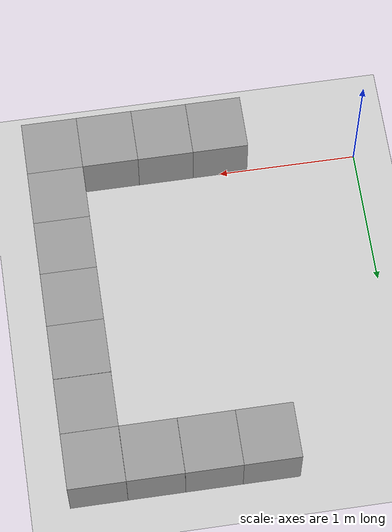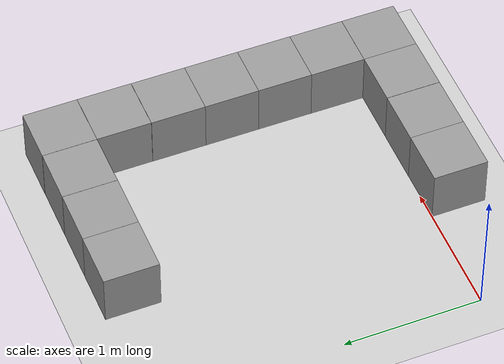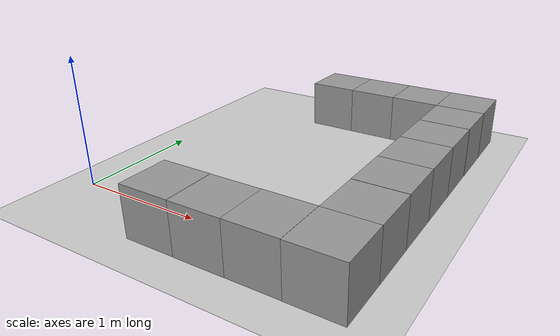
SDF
<sdf version="1.7">
 <world name="default">
  <model name="ground_plane">
   <static>1</static>
   <link name="link">
    <collision name="collision">
     <geometry><plane><normal>0 0 1</normal><size>100 100</size></plane></geometry>
     <surface><friction><ode><mu>100</mu><mu2>50</mu2></ode></friction></surface>
    </collision>
    <visual name="visual">
     <cast_shadows>0</cast_shadows>
     <geometry><plane><normal>0 0 1</normal><size>100 100</size></plane></geometry>
     <material>
      <script><uri>file://media/materials/scripts/gazebo.material</uri><name>Gazebo/Grey</name></script>
     </material>
    </visual>
   </link>
  </model>
  <model name="simplebox_clone_11">
   <link name="link_0_clone">
    <inertial>
     <mass>1</mass>
     <inertia>
      <ixx>0.166667</ixx>
      <ixy>0</ixy>
      <ixz>0</ixz>
      <iyy>0.166667</iyy>
      <iyz>0</iyz>
      <izz>0.166667</izz>
     </inertia>
    </inertial>
    <pose>0 0 0.2 0 -0 0</pose>
    <visual name="visual">
     <geometry><box><size>0.4 0.4 0.4</size></box></geometry>
     <material>
      <lighting>1</lighting>
      <script><uri>file://media/materials/scripts/gazebo.material</uri><name>Gazebo/Grey</name></script>
      <shader type="pixel"><normal_map>__default__</normal_map></shader>
      <ambient>0.3 0.3 0.3 1</ambient>
      <diffuse>0.7 0.7 0.7 1</diffuse>
      <specular>0.01 0.01 0.01 1</specular>
      <emissive>0 0 0 1</emissive>
     </material>
    </visual>
    <collision name="collision">
     <geometry><box><size>0.4 0.4 0.4</size></box></geometry>
     <surface>
      <friction>
       <ode><mu>1</mu><mu2>1</mu2><fdir1>0 0 0</fdir1><slip1>0</slip1><slip2>0</slip2></ode>
       <torsional>
        <coefficient>1</coefficient>
        <patch_radius>0</patch_radius>
        <surface_radius>0</surface_radius>
        <use_patch_radius>1</use_patch_radius>
        <ode><slip>0</slip></ode>
       </torsional>
      </friction>
      <bounce><restitution_coefficient>0</restitution_coefficient><threshold>1e+06</threshold></bounce>
      <contact>
       <collide_without_contact>0</collide_without_contact>
       <collide_without_contact_bitmask>1</collide_without_contact_bitmask>
       <collide_bitmask>1</collide_bitmask>
       <ode>
        <soft_cfm>0</soft_cfm>
        <soft_erp>0.2</soft_erp>
        <kp>1e+13</kp>
        <kd>1</kd>
        <max_vel>0.01</max_vel>
        <min_depth>0</min_depth>
       </ode>
       <bullet>
        <split_impulse>1</split_impulse>
        <split_impulse_penetration_threshold>-0.01</split_impulse_penetration_threshold>
        <soft_cfm>0</soft_cfm>
        <soft_erp>0.2</soft_erp>
        <kp>1e+13</kp>
        <kd>1</kd>
       </bullet>
      </contact>
     </surface>
    </collision>
   </link>
   <static>0</static>
   <pose>0.999926 2.20003 -0 0 -0 6.2e-05</pose>
  </model>
  <model name="simplebox_clone_12">
   <link name="link_0_clone">
    <inertial>
     <mass>1</mass>
     <inertia>
      <ixx>0.166667</ixx>
      <ixy>0</ixy>
      <ixz>0</ixz>
      <iyy>0.166667</iyy>
      <iyz>0</iyz>
      <izz>0.166667</izz>
     </inertia>
    </inertial>
    <pose>0 0 0.2 0 -0 0</pose>
    <visual name="visual">
     <geometry><box><size>0.4 0.4 0.4</size></box></geometry>
     <material>
      <lighting>1</lighting>
      <script><uri>file://media/materials/scripts/gazebo.material</uri><name>Gazebo/Grey</name></script>
      <shader type="pixel"><normal_map>__default__</normal_map></shader>
      <ambient>0.3 0.3 0.3 1</ambient>
      <diffuse>0.7 0.7 0.7 1</diffuse>
      <specular>0.01 0.01 0.01 1</specular>
      <emissive>0 0 0 1</emissive>
     </material>
    </visual>
    <collision name="collision">
     <geometry><box><size>0.4 0.4 0.4</size></box></geometry>
     <surface>
      <friction>
       <ode><mu>1</mu><mu2>1</mu2><fdir1>0 0 0</fdir1><slip1>0</slip1><slip2>0</slip2></ode>
       <torsional>
        <coefficient>1</coefficient>
        <patch_radius>0</patch_radius>
        <surface_radius>0</surface_radius>
        <use_patch_radius>1</use_patch_radius>
        <ode><slip>0</slip></ode>
       </torsional>
      </friction>
      <bounce><restitution_coefficient>0</restitution_coefficient><threshold>1e+06</threshold></bounce>
      <contact>
       <collide_without_contact>0</collide_without_contact>
       <collide_without_contact_bitmask>1</collide_without_contact_bitmask>
       <collide_bitmask>1</collide_bitmask>
       <ode>
        <soft_cfm>0</soft_cfm>
        <soft_erp>0.2</soft_erp>
        <kp>1e+13</kp>
        <kd>1</kd>
        <max_vel>0.01</max_vel>
        <min_depth>0</min_depth>
       </ode>
       <bullet>
        <split_impulse>1</split_impulse>
        <split_impulse_penetration_threshold>-0.01</split_impulse_penetration_threshold>
        <soft_cfm>0</soft_cfm>
        <soft_erp>0.2</soft_erp>
        <kp>1e+13</kp>
        <kd>1</kd>
       </bullet>
      </contact>
     </surface>
    </collision>
   </link>
   <static>0</static>
   <pose>1.39994 2.20002 -0 0 -0 0.000118</pose>
  </model>
  <model name="simplebox_clone_13">
   <link name="link_0_clone">
    <inertial>
     <mass>1</mass>
     <inertia>
      <ixx>0.166667</ixx>
      <ixy>0</ixy>
      <ixz>0</ixz>
      <iyy>0.166667</iyy>
      <iyz>0</iyz>
      <izz>0.166667</izz>
     </inertia>
    </inertial>
    <pose>0 0 0.2 0 -0 0</pose>
    <visual name="visual">
     <geometry><box><size>0.4 0.4 0.4</size></box></geometry>
     <material>
      <lighting>1</lighting>
      <script><uri>file://media/materials/scripts/gazebo.material</uri><name>Gazebo/Grey</name></script>
      <shader type="pixel"><normal_map>__default__</normal_map></shader>
      <ambient>0.3 0.3 0.3 1</ambient>
      <diffuse>0.7 0.7 0.7 1</diffuse>
      <specular>0.01 0.01 0.01 1</specular>
      <emissive>0 0 0 1</emissive>
     </material>
    </visual>
    <collision name="collision">
     <geometry><box><size>0.4 0.4 0.4</size></box></geometry>
     <surface>
      <friction>
       <ode><mu>1</mu><mu2>1</mu2><fdir1>0 0 0</fdir1><slip1>0</slip1><slip2>0</slip2></ode>
       <torsional>
        <coefficient>1</coefficient>
        <patch_radius>0</patch_radius>
        <surface_radius>0</surface_radius>
        <use_patch_radius>1</use_patch_radius>
        <ode><slip>0</slip></ode>
       </torsional>
      </friction>
      <bounce><restitution_coefficient>0</restitution_coefficient><threshold>1e+06</threshold></bounce>
      <contact>
       <collide_without_contact>0</collide_without_contact>
       <collide_without_contact_bitmask>1</collide_without_contact_bitmask>
       <collide_bitmask>1</collide_bitmask>
       <ode>
        <soft_cfm>0</soft_cfm>
        <soft_erp>0.2</soft_erp>
        <kp>1e+13</kp>
        <kd>1</kd>
        <max_vel>0.01</max_vel>
        <min_depth>0</min_depth>
       </ode>
       <bullet>
        <split_impulse>1</split_impulse>
        <split_impulse_penetration_threshold>-0.01</split_impulse_penetration_threshold>
        <soft_cfm>0</soft_cfm>
        <soft_erp>0.2</soft_erp>
        <kp>1e+13</kp>
        <kd>1</kd>
       </bullet>
      </contact>
     </surface>
    </collision>
   </link>
   <static>0</static>
   <pose>1.80018 2.20005 -0 -0 -0 -0.00013</pose>
  </model>
  <model name="simplebox_clone_14_clone">
   <link name="link_0_clone">
    <inertial>
     <mass>1</mass>
     <inertia>
      <ixx>0.166667</ixx>
      <ixy>0</ixy>
      <ixz>0</ixz>
      <iyy>0.166667</iyy>
      <iyz>0</iyz>
      <izz>0.166667</izz>
     </inertia>
    </inertial>
    <pose>0 0 0.2 0 -0 0</pose>
    <visual name="visual">
     <geometry><box><size>0.4 0.4 0.4</size></box></geometry>
     <material>
      <lighting>1</lighting>
      <script><uri>file://media/materials/scripts/gazebo.material</uri><name>Gazebo/Grey</name></script>
      <shader type="pixel"><normal_map>__default__</normal_map></shader>
      <ambient>0.3 0.3 0.3 1</ambient>
      <diffuse>0.7 0.7 0.7 1</diffuse>
      <specular>0.01 0.01 0.01 1</specular>
      <emissive>0 0 0 1</emissive>
     </material>
    </visual>
    <collision name="collision">
     <geometry><box><size>0.4 0.4 0.4</size></box></geometry>
     <surface>
      <friction>
       <ode><mu>1</mu><mu2>1</mu2><fdir1>0 0 0</fdir1><slip1>0</slip1><slip2>0</slip2></ode>
       <torsional>
        <coefficient>1</coefficient>
        <patch_radius>0</patch_radius>
        <surface_radius>0</surface_radius>
        <use_patch_radius>1</use_patch_radius>
        <ode><slip>0</slip></ode>
       </torsional>
      </friction>
      <bounce><restitution_coefficient>0</restitution_coefficient><threshold>1e+06</threshold></bounce>
      <contact>
       <collide_without_contact>0</collide_without_contact>
       <collide_without_contact_bitmask>1</collide_without_contact_bitmask>
       <collide_bitmask>1</collide_bitmask>
       <ode>
        <soft_cfm>0</soft_cfm>
        <soft_erp>0.2</soft_erp>
        <kp>1e+13</kp>
        <kd>1</kd>
        <max_vel>0.01</max_vel>
        <min_depth>0</min_depth>
       </ode>
       <bullet>
        <split_impulse>1</split_impulse>
        <split_impulse_penetration_threshold>-0.01</split_impulse_penetration_threshold>
        <soft_cfm>0</soft_cfm>
        <soft_erp>0.2</soft_erp>
        <kp>1e+13</kp>
        <kd>1</kd>
       </bullet>
      </contact>
     </surface>
    </collision>
   </link>
   <static>0</static>
   <pose>2.20103 1.80075 -0 0 -0 0.000131</pose>
  </model>
  <model name="simplebox_clone_14_clone_0">
   <link name="link_0_clone">
    <inertial>
     <mass>1</mass>
     <inertia>
      <ixx>0.166667</ixx>
      <ixy>0</ixy>
      <ixz>0</ixz>
      <iyy>0.166667</iyy>
      <iyz>0</iyz>
      <izz>0.166667</izz>
     </inertia>
    </inertial>
    <pose>0 0 0.2 0 -0 0</pose>
    <visual name="visual">
     <geometry><box><size>0.4 0.4 0.4</size></box></geometry>
     <material>
      <lighting>1</lighting>
      <script><uri>file://media/materials/scripts/gazebo.material</uri><name>Gazebo/Grey</name></script>
      <shader type="pixel"><normal_map>__default__</normal_map></shader>
      <ambient>0.3 0.3 0.3 1</ambient>
      <diffuse>0.7 0.7 0.7 1</diffuse>
      <specular>0.01 0.01 0.01 1</specular>
      <emissive>0 0 0 1</emissive>
     </material>
    </visual>
    <collision name="collision">
     <geometry><box><size>0.4 0.4 0.4</size></box></geometry>
     <surface>
      <friction>
       <ode><mu>1</mu><mu2>1</mu2><fdir1>0 0 0</fdir1><slip1>0</slip1><slip2>0</slip2></ode>
       <torsional>
        <coefficient>1</coefficient>
        <patch_radius>0</patch_radius>
        <surface_radius>0</surface_radius>
        <use_patch_radius>1</use_patch_radius>
        <ode><slip>0</slip></ode>
       </torsional>
      </friction>
      <bounce><restitution_coefficient>0</restitution_coefficient><threshold>1e+06</threshold></bounce>
      <contact>
       <collide_without_contact>0</collide_without_contact>
       <collide_without_contact_bitmask>1</collide_without_contact_bitmask>
       <collide_bitmask>1</collide_bitmask>
       <ode>
        <soft_cfm>0</soft_cfm>
        <soft_erp>0.2</soft_erp>
        <kp>1e+13</kp>
        <kd>1</kd>
        <max_vel>0.01</max_vel>
        <min_depth>0</min_depth>
       </ode>
       <bullet>
        <split_impulse>1</split_impulse>
        <split_impulse_penetration_threshold>-0.01</split_impulse_penetration_threshold>
        <soft_cfm>0</soft_cfm>
        <soft_erp>0.2</soft_erp>
        <kp>1e+13</kp>
        <kd>1</kd>
       </bullet>
      </contact>
     </surface>
    </collision>
   </link>
   <static>0</static>
   <pose>2.2007 2.201 -0 0 -0 0.001377</pose>
  </model>
  <model name="simplebox_clone_2_clone_2_clone_0">
   <link name="link_0_clone">
    <inertial>
     <mass>1</mass>
     <inertia>
      <ixx>0.166667</ixx>
      <ixy>0</ixy>
      <ixz>0</ixz>
      <iyy>0.166667</iyy>
      <iyz>0</iyz>
      <izz>0.166667</izz>
     </inertia>
    </inertial>
    <pose>0 0 0.2 0 -0 0</pose>
    <visual name="visual">
     <geometry><box><size>0.4 0.4 0.4</size></box></geometry>
     <material>
      <lighting>1</lighting>
      <script><uri>file://media/materials/scripts/gazebo.material</uri><name>Gazebo/Grey</name></script>
      <shader type="pixel"><normal_map>__default__</normal_map></shader>
      <ambient>0.3 0.3 0.3 1</ambient>
      <diffuse>0.7 0.7 0.7 1</diffuse>
      <specular>0.01 0.01 0.01 1</specular>
      <emissive>0 0 0 1</emissive>
     </material>
    </visual>
    <collision name="collision">
     <geometry><box><size>0.4 0.4 0.4</size></box></geometry>
     <surface>
      <friction>
       <ode><mu>1</mu><mu2>1</mu2><fdir1>0 0 0</fdir1><slip1>0</slip1><slip2>0</slip2></ode>
       <torsional>
        <coefficient>1</coefficient>
        <patch_radius>0</patch_radius>
        <surface_radius>0</surface_radius>
        <use_patch_radius>1</use_patch_radius>
        <ode><slip>0</slip></ode>
       </torsional>
      </friction>
      <bounce><restitution_coefficient>0</restitution_coefficient><threshold>1e+06</threshold></bounce>
      <contact>
       <collide_without_contact>0</collide_without_contact>
       <collide_without_contact_bitmask>1</collide_without_contact_bitmask>
       <collide_bitmask>1</collide_bitmask>
       <ode>
        <soft_cfm>0</soft_cfm>
        <soft_erp>0.2</soft_erp>
        <kp>1e+13</kp>
        <kd>1</kd>
        <max_vel>0.01</max_vel>
        <min_depth>0</min_depth>
       </ode>
       <bullet>
        <split_impulse>1</split_impulse>
        <split_impulse_penetration_threshold>-0.01</split_impulse_penetration_threshold>
        <soft_cfm>0</soft_cfm>
        <soft_erp>0.2</soft_erp>
        <kp>1e+13</kp>
        <kd>1</kd>
       </bullet>
      </contact>
     </surface>
    </collision>
   </link>
   <static>0</static>
   <pose>0.999997 -0.199999 -0 0 -0 3e-06</pose>
  </model>
  <model name="simplebox_clone_2_clone_2_clone_1">
   <link name="link_0_clone">
    <inertial>
     <mass>1</mass>
     <inertia>
      <ixx>0.166667</ixx>
      <ixy>0</ixy>
      <ixz>0</ixz>
      <iyy>0.166667</iyy>
      <iyz>0</iyz>
      <izz>0.166667</izz>
     </inertia>
    </inertial>
    <pose>0 0 0.2 0 -0 0</pose>
    <visual name="visual">
     <geometry><box><size>0.4 0.4 0.4</size></box></geometry>
     <material>
      <lighting>1</lighting>
      <script><uri>file://media/materials/scripts/gazebo.material</uri><name>Gazebo/Grey</name></script>
      <shader type="pixel"><normal_map>__default__</normal_map></shader>
      <ambient>0.3 0.3 0.3 1</ambient>
      <diffuse>0.7 0.7 0.7 1</diffuse>
      <specular>0.01 0.01 0.01 1</specular>
      <emissive>0 0 0 1</emissive>
     </material>
    </visual>
    <collision name="collision">
     <geometry><box><size>0.4 0.4 0.4</size></box></geometry>
     <surface>
      <friction>
       <ode><mu>1</mu><mu2>1</mu2><fdir1>0 0 0</fdir1><slip1>0</slip1><slip2>0</slip2></ode>
       <torsional>
        <coefficient>1</coefficient>
        <patch_radius>0</patch_radius>
        <surface_radius>0</surface_radius>
        <use_patch_radius>1</use_patch_radius>
        <ode><slip>0</slip></ode>
       </torsional>
      </friction>
      <bounce><restitution_coefficient>0</restitution_coefficient><threshold>1e+06</threshold></bounce>
      <contact>
       <collide_without_contact>0</collide_without_contact>
       <collide_without_contact_bitmask>1</collide_without_contact_bitmask>
       <collide_bitmask>1</collide_bitmask>
       <ode>
        <soft_cfm>0</soft_cfm>
        <soft_erp>0.2</soft_erp>
        <kp>1e+13</kp>
        <kd>1</kd>
        <max_vel>0.01</max_vel>
        <min_depth>0</min_depth>
       </ode>
       <bullet>
        <split_impulse>1</split_impulse>
        <split_impulse_penetration_threshold>-0.01</split_impulse_penetration_threshold>
        <soft_cfm>0</soft_cfm>
        <soft_erp>0.2</soft_erp>
        <kp>1e+13</kp>
        <kd>1</kd>
       </bullet>
      </contact>
     </surface>
    </collision>
   </link>
   <static>0</static>
   <pose>1.4 -0.199996 -0.001323 0 -0 9e-06</pose>
  </model>
  <model name="simplebox_clone_2_clone_2_clone_2">
   <link name="link_0_clone">
    <inertial>
     <mass>1</mass>
     <inertia>
      <ixx>0.166667</ixx>
      <ixy>0</ixy>
      <ixz>0</ixz>
      <iyy>0.166667</iyy>
      <iyz>0</iyz>
      <izz>0.166667</izz>
     </inertia>
    </inertial>
    <pose>0 0 0.2 0 -0 0</pose>
    <visual name="visual">
     <geometry><box><size>0.4 0.4 0.4</size></box></geometry>
     <material>
      <lighting>1</lighting>
      <script><uri>file://media/materials/scripts/gazebo.material</uri><name>Gazebo/Grey</name></script>
      <shader type="pixel"><normal_map>__default__</normal_map></shader>
      <ambient>0.3 0.3 0.3 1</ambient>
      <diffuse>0.7 0.7 0.7 1</diffuse>
      <specular>0.01 0.01 0.01 1</specular>
      <emissive>0 0 0 1</emissive>
     </material>
    </visual>
    <collision name="collision">
     <geometry><box><size>0.4 0.4 0.4</size></box></geometry>
     <surface>
      <friction>
       <ode><mu>1</mu><mu2>1</mu2><fdir1>0 0 0</fdir1><slip1>0</slip1><slip2>0</slip2></ode>
       <torsional>
        <coefficient>1</coefficient>
        <patch_radius>0</patch_radius>
        <surface_radius>0</surface_radius>
        <use_patch_radius>1</use_patch_radius>
        <ode><slip>0</slip></ode>
       </torsional>
      </friction>
      <bounce><restitution_coefficient>0</restitution_coefficient><threshold>1e+06</threshold></bounce>
      <contact>
       <collide_without_contact>0</collide_without_contact>
       <collide_without_contact_bitmask>1</collide_without_contact_bitmask>
       <collide_bitmask>1</collide_bitmask>
       <ode>
        <soft_cfm>0</soft_cfm>
        <soft_erp>0.2</soft_erp>
        <kp>1e+13</kp>
        <kd>1</kd>
        <max_vel>0.01</max_vel>
        <min_depth>0</min_depth>
       </ode>
       <bullet>
        <split_impulse>1</split_impulse>
        <split_impulse_penetration_threshold>-0.01</split_impulse_penetration_threshold>
        <soft_cfm>0</soft_cfm>
        <soft_erp>0.2</soft_erp>
        <kp>1e+13</kp>
        <kd>1</kd>
       </bullet>
      </contact>
     </surface>
    </collision>
   </link>
   <static>0</static>
   <pose>1.8 -0.2 -5e-06 -7e-06 -6e-06 1e-05</pose>
  </model>
  <model name="simplebox_clone_2_clone_2_clone_3">
   <link name="link_0_clone">
    <inertial>
     <mass>1</mass>
     <inertia>
      <ixx>0.166667</ixx>
      <ixy>0</ixy>
      <ixz>0</ixz>
      <iyy>0.166667</iyy>
      <iyz>0</iyz>
      <izz>0.166667</izz>
     </inertia>
    </inertial>
    <pose>0 0 0.2 0 -0 0</pose>
    <visual name="visual">
     <geometry><box><size>0.4 0.4 0.4</size></box></geometry>
     <material>
      <lighting>1</lighting>
      <script><uri>file://media/materials/scripts/gazebo.material</uri><name>Gazebo/Grey</name></script>
      <shader type="pixel"><normal_map>__default__</normal_map></shader>
      <ambient>0.3 0.3 0.3 1</ambient>
      <diffuse>0.7 0.7 0.7 1</diffuse>
      <specular>0.01 0.01 0.01 1</specular>
      <emissive>0 0 0 1</emissive>
     </material>
    </visual>
    <collision name="collision">
     <geometry><box><size>0.4 0.4 0.4</size></box></geometry>
     <surface>
      <friction>
       <ode><mu>1</mu><mu2>1</mu2><fdir1>0 0 0</fdir1><slip1>0</slip1><slip2>0</slip2></ode>
       <torsional>
        <coefficient>1</coefficient>
        <patch_radius>0</patch_radius>
        <surface_radius>0</surface_radius>
        <use_patch_radius>1</use_patch_radius>
        <ode><slip>0</slip></ode>
       </torsional>
      </friction>
      <bounce><restitution_coefficient>0</restitution_coefficient><threshold>1e+06</threshold></bounce>
      <contact>
       <collide_without_contact>0</collide_without_contact>
       <collide_without_contact_bitmask>1</collide_without_contact_bitmask>
       <collide_bitmask>1</collide_bitmask>
       <ode>
        <soft_cfm>0</soft_cfm>
        <soft_erp>0.2</soft_erp>
        <kp>1e+13</kp>
        <kd>1</kd>
        <max_vel>0.01</max_vel>
        <min_depth>0</min_depth>
       </ode>
       <bullet>
        <split_impulse>1</split_impulse>
        <split_impulse_penetration_threshold>-0.01</split_impulse_penetration_threshold>
        <soft_cfm>0</soft_cfm>
        <soft_erp>0.2</soft_erp>
        <kp>1e+13</kp>
        <kd>1</kd>
       </bullet>
      </contact>
     </surface>
    </collision>
   </link>
   <static>0</static>
   <pose>2.2 -0.200005 -0.001166 0 -0 9e-06</pose>
  </model>
  <model name="simplebox_clone_2_clone_2_clone_3_clone">
   <link name="link_0_clone">
    <inertial>
     <mass>1</mass>
     <inertia>
      <ixx>0.166667</ixx>
      <ixy>0</ixy>
      <ixz>0</ixz>
      <iyy>0.166667</iyy>
      <iyz>0</iyz>
      <izz>0.166667</izz>
     </inertia>
    </inertial>
    <pose>0 0 0.2 0 -0 0</pose>
    <visual name="visual">
     <geometry><box><size>0.4 0.4 0.4</size></box></geometry>
     <material>
      <lighting>1</lighting>
      <script><uri>file://media/materials/scripts/gazebo.material</uri><name>Gazebo/Grey</name></script>
      <shader type="pixel"><normal_map>__default__</normal_map></shader>
      <ambient>0.3 0.3 0.3 1</ambient>
      <diffuse>0.7 0.7 0.7 1</diffuse>
      <specular>0.01 0.01 0.01 1</specular>
      <emissive>0 0 0 1</emissive>
     </material>
    </visual>
    <collision name="collision">
     <geometry><box><size>0.4 0.4 0.4</size></box></geometry>
     <surface>
      <friction>
       <ode><mu>1</mu><mu2>1</mu2><fdir1>0 0 0</fdir1><slip1>0</slip1><slip2>0</slip2></ode>
       <torsional>
        <coefficient>1</coefficient>
        <patch_radius>0</patch_radius>
        <surface_radius>0</surface_radius>
        <use_patch_radius>1</use_patch_radius>
        <ode><slip>0</slip></ode>
       </torsional>
      </friction>
      <bounce><restitution_coefficient>0</restitution_coefficient><threshold>1e+06</threshold></bounce>
      <contact>
       <collide_without_contact>0</collide_without_contact>
       <collide_without_contact_bitmask>1</collide_without_contact_bitmask>
       <collide_bitmask>1</collide_bitmask>
       <ode>
        <soft_cfm>0</soft_cfm>
        <soft_erp>0.2</soft_erp>
        <kp>1e+13</kp>
        <kd>1</kd>
        <max_vel>0.01</max_vel>
        <min_depth>0</min_depth>
       </ode>
       <bullet>
        <split_impulse>1</split_impulse>
        <split_impulse_penetration_threshold>-0.01</split_impulse_penetration_threshold>
        <soft_cfm>0</soft_cfm>
        <soft_erp>0.2</soft_erp>
        <kp>1e+13</kp>
        <kd>1</kd>
       </bullet>
      </contact>
     </surface>
    </collision>
   </link>
   <static>0</static>
   <pose>2.2 0.600003 -0 0 -0 1.1e-05</pose>
  </model>
  <model name="simplebox_clone_2_clone_2_clone_3_clone_0">
   <link name="link_0_clone">
    <inertial>
     <mass>1</mass>
     <inertia>
      <ixx>0.166667</ixx>
      <ixy>0</ixy>
      <ixz>0</ixz>
      <iyy>0.166667</iyy>
      <iyz>0</iyz>
      <izz>0.166667</izz>
     </inertia>
    </inertial>
    <pose>0 0 0.2 0 -0 0</pose>
    <visual name="visual">
     <geometry><box><size>0.4 0.4 0.4</size></box></geometry>
     <material>
      <lighting>1</lighting>
      <script><uri>file://media/materials/scripts/gazebo.material</uri><name>Gazebo/Grey</name></script>
      <shader type="pixel"><normal_map>__default__</normal_map></shader>
      <ambient>0.3 0.3 0.3 1</ambient>
      <diffuse>0.7 0.7 0.7 1</diffuse>
      <specular>0.01 0.01 0.01 1</specular>
      <emissive>0 0 0 1</emissive>
     </material>
    </visual>
    <collision name="collision">
     <geometry><box><size>0.4 0.4 0.4</size></box></geometry>
     <surface>
      <friction>
       <ode><mu>1</mu><mu2>1</mu2><fdir1>0 0 0</fdir1><slip1>0</slip1><slip2>0</slip2></ode>
       <torsional>
        <coefficient>1</coefficient>
        <patch_radius>0</patch_radius>
        <surface_radius>0</surface_radius>
        <use_patch_radius>1</use_patch_radius>
        <ode><slip>0</slip></ode>
       </torsional>
      </friction>
      <bounce><restitution_coefficient>0</restitution_coefficient><threshold>1e+06</threshold></bounce>
      <contact>
       <collide_without_contact>0</collide_without_contact>
       <collide_without_contact_bitmask>1</collide_without_contact_bitmask>
       <collide_bitmask>1</collide_bitmask>
       <ode>
        <soft_cfm>0</soft_cfm>
        <soft_erp>0.2</soft_erp>
        <kp>1e+13</kp>
        <kd>1</kd>
        <max_vel>0.01</max_vel>
        <min_depth>0</min_depth>
       </ode>
       <bullet>
        <split_impulse>1</split_impulse>
        <split_impulse_penetration_threshold>-0.01</split_impulse_penetration_threshold>
        <soft_cfm>0</soft_cfm>
        <soft_erp>0.2</soft_erp>
        <kp>1e+13</kp>
        <kd>1</kd>
       </bullet>
      </contact>
     </surface>
    </collision>
   </link>
   <static>0</static>
   <pose>2.2 1 -0 0 -0 1.1e-05</pose>
  </model>
  <model name="simplebox_clone_2_clone_2_clone_3_clone_1">
   <link name="link_0_clone">
    <inertial>
     <mass>1</mass>
     <inertia>
      <ixx>0.166667</ixx>
      <ixy>0</ixy>
      <ixz>0</ixz>
      <iyy>0.166667</iyy>
      <iyz>0</iyz>
      <izz>0.166667</izz>
     </inertia>
    </inertial>
    <pose>0 0 0.2 0 -0 0</pose>
    <visual name="visual">
     <geometry><box><size>0.4 0.4 0.4</size></box></geometry>
     <material>
      <lighting>1</lighting>
      <script><uri>file://media/materials/scripts/gazebo.material</uri><name>Gazebo/Grey</name></script>
      <shader type="pixel"><normal_map>__default__</normal_map></shader>
      <ambient>0.3 0.3 0.3 1</ambient>
      <diffuse>0.7 0.7 0.7 1</diffuse>
      <specular>0.01 0.01 0.01 1</specular>
      <emissive>0 0 0 1</emissive>
     </material>
    </visual>
    <collision name="collision">
     <geometry><box><size>0.4 0.4 0.4</size></box></geometry>
     <surface>
      <friction>
       <ode><mu>1</mu><mu2>1</mu2><fdir1>0 0 0</fdir1><slip1>0</slip1><slip2>0</slip2></ode>
       <torsional>
        <coefficient>1</coefficient>
        <patch_radius>0</patch_radius>
        <surface_radius>0</surface_radius>
        <use_patch_radius>1</use_patch_radius>
        <ode><slip>0</slip></ode>
       </torsional>
      </friction>
      <bounce><restitution_coefficient>0</restitution_coefficient><threshold>1e+06</threshold></bounce>
      <contact>
       <collide_without_contact>0</collide_without_contact>
       <collide_without_contact_bitmask>1</collide_without_contact_bitmask>
       <collide_bitmask>1</collide_bitmask>
       <ode>
        <soft_cfm>0</soft_cfm>
        <soft_erp>0.2</soft_erp>
        <kp>1e+13</kp>
        <kd>1</kd>
        <max_vel>0.01</max_vel>
        <min_depth>0</min_depth>
       </ode>
       <bullet>
        <split_impulse>1</split_impulse>
        <split_impulse_penetration_threshold>-0.01</split_impulse_penetration_threshold>
        <soft_cfm>0</soft_cfm>
        <soft_erp>0.2</soft_erp>
        <kp>1e+13</kp>
        <kd>1</kd>
       </bullet>
      </contact>
     </surface>
    </collision>
   </link>
   <static>0</static>
   <pose>2.2 1.4 -1e-06 0 7e-06 1.1e-05</pose>
  </model>
  <model name="simplebox_clone_2_clone_2_clone_3_clone_2">
   <link name="link_0_clone">
    <inertial>
     <mass>1</mass>
     <inertia>
      <ixx>0.166667</ixx>
      <ixy>0</ixy>
      <ixz>0</ixz>
      <iyy>0.166667</iyy>
      <iyz>0</iyz>
      <izz>0.166667</izz>
     </inertia>
    </inertial>
    <pose>0 0 0.2 0 -0 0</pose>
    <visual name="visual">
     <geometry><box><size>0.4 0.4 0.4</size></box></geometry>
     <material>
      <lighting>1</lighting>
      <script><uri>file://media/materials/scripts/gazebo.material</uri><name>Gazebo/Grey</name></script>
      <shader type="pixel"><normal_map>__default__</normal_map></shader>
      <ambient>0.3 0.3 0.3 1</ambient>
      <diffuse>0.7 0.7 0.7 1</diffuse>
      <specular>0.01 0.01 0.01 1</specular>
      <emissive>0 0 0 1</emissive>
     </material>
    </visual>
    <collision name="collision">
     <geometry><box><size>0.4 0.4 0.4</size></box></geometry>
     <surface>
      <friction>
       <ode><mu>1</mu><mu2>1</mu2><fdir1>0 0 0</fdir1><slip1>0</slip1><slip2>0</slip2></ode>
       <torsional>
        <coefficient>1</coefficient>
        <patch_radius>0</patch_radius>
        <surface_radius>0</surface_radius>
        <use_patch_radius>1</use_patch_radius>
        <ode><slip>0</slip></ode>
       </torsional>
      </friction>
      <bounce><restitution_coefficient>0</restitution_coefficient><threshold>1e+06</threshold></bounce>
      <contact>
       <collide_without_contact>0</collide_without_contact>
       <collide_without_contact_bitmask>1</collide_without_contact_bitmask>
       <collide_bitmask>1</collide_bitmask>
       <ode>
        <soft_cfm>0</soft_cfm>
        <soft_erp>0.2</soft_erp>
        <kp>1e+13</kp>
        <kd>1</kd>
        <max_vel>0.01</max_vel>
        <min_depth>0</min_depth>
       </ode>
       <bullet>
        <split_impulse>1</split_impulse>
        <split_impulse_penetration_threshold>-0.01</split_impulse_penetration_threshold>
        <soft_cfm>0</soft_cfm>
        <soft_erp>0.2</soft_erp>
        <kp>1e+13</kp>
        <kd>1</kd>
       </bullet>
      </contact>
     </surface>
    </collision>
   </link>
   <static>0</static>
   <pose>2.2 0.199998 -0.001323 0 -0 4e-06</pose>
  </model>
 </world>
</sdf>
